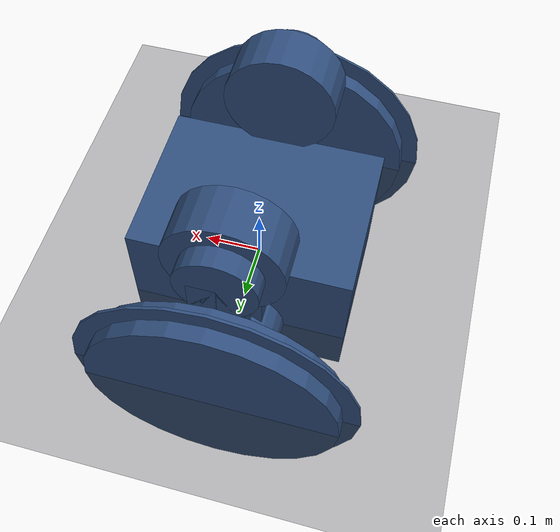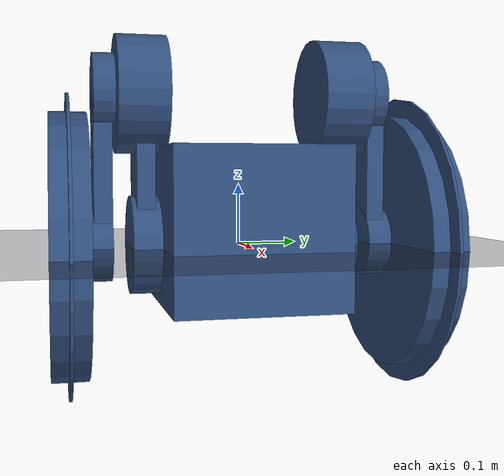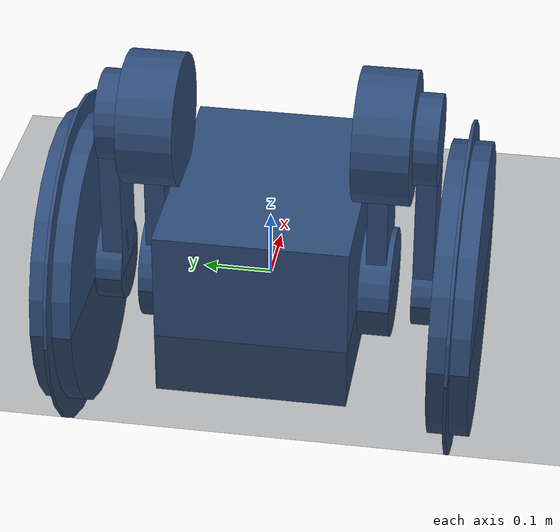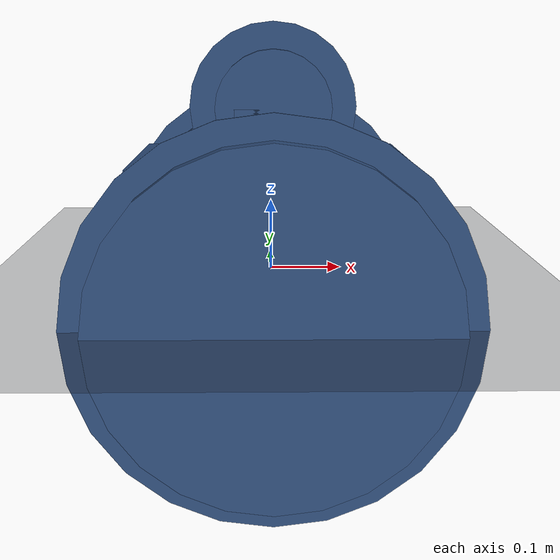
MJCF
<mujoco model="ascento_mujoco">
  <compiler angle="radian" meshdir="./"/>

  <worldbody>
    <geom name="floor" size="20 20 0.1" type="plane" contype="2" friction="0.8 0.02 0.002" solref="0.006" solimp="0.9 0.97" rgba="0.12 0.13 0.16 1"/>
    <light name="studio_key" pos="-1.5 -2.5 3" ambient="0.9 0.9 0.9" diffuse="1 1 1"/>
    <light name="studio_fill" pos="1.5 1.5 2.2" ambient="0.3 0.3 0.3" diffuse="0.9 0.9 0.9"/>
    <light name="studio_front" pos="0 -3 1.2" ambient="0.4 0.4 0.4" diffuse="1 1 1"/>
    <body name="base">
      <joint type="free"/>
      <geom size="0.19 0.14 0.13" pos="0 0 0.034" type="box" conaffinity="2" rgba="0.18 0.3 0.48 1"/>
      <geom size="0.068 0.115" type="cylinder" conaffinity="2" rgba="0.18 0.3 0.48 1"/>
      <site name="imu_reference"/>
      <body name="left_thigh" pos="0 0.1385 0">
        <inertial pos="0 0.038 0.212" quat="0.705337 -0.0135545 0.0179466 0.708515" mass="3.783" diaginertia="0.0464738 0.0410211 0.00933011"/>
        <joint name="left_hip" range="-4.71239 -1.5708" actuatorfrcrange="-40 40" frictionloss="0.5" axis="0 -1 0" limited="true"/>
        <geom size="0.082 0.024" pos="0 0.024 0" quat="0.707107 0.707107 0 0" type="cylinder" conaffinity="2" rgba="0.18 0.3 0.48 1"/>
        <geom size="0.098 0.04125" pos="0 0.03 0.25" quat="0.707107 0.707107 0 0" type="cylinder" conaffinity="2" rgba="0.18 0.3 0.48 1"/>
        <geom size="0.0525 0.015 0.125" pos="0 0.025 0.125" type="box" conaffinity="2" rgba="0.18 0.3 0.48 1"/>
        <body name="left_shank" pos="0 0.073 0.25">
          <inertial pos="0 0.035 -0.188" quat="0.706988 0.0372767 -0.0356313 0.705344" mass="2.266" diaginertia="0.0256807 0.0243201 0.0029812"/>
          <joint name="left_knee" range="-4.71239 -1.5708" actuatorfrcrange="-40 40" frictionloss="0.5" axis="0 1 0" limited="true"/>
          <geom size="0.067 0.0175" pos="0 0.0175 0" quat="0.707107 0.707107 0 0" type="cylinder" conaffinity="2" rgba="0.18 0.3 0.48 1"/>
          <geom size="0.06 0.02" pos="0 0.025 -0.25" quat="0.707107 0.707107 0 0" type="cylinder" conaffinity="2" rgba="0.18 0.3 0.48 1"/>
          <geom size="0.045 0.015 0.125" pos="0 0.02 -0.125" type="box" conaffinity="2" rgba="0.18 0.3 0.48 1"/>
          <body name="left_wheel" pos="0 0.075 -0.25">
            <inertial pos="0 0 0" quat="0.706743 -0.0227194 -0.0227063 0.706741" mass="1.712" diaginertia="0.07635 0.0389109 0.0386891"/>
            <joint name="left_wheel_joint" actuatorfrcrange="-40 40" frictionloss="0.2" axis="0 1 0"/>
            <geom size="0.25 0.0025" quat="0.707107 0.707107 0 0" type="cylinder" conaffinity="2" condim="6" friction="0.8 0.02 0.002" solref="0.006" solimp="0.9 0.97" rgba="0.18 0.3 0.48 1"/>
            <geom size="0.22 0.03" quat="0.707107 0.707107 0 0" type="cylinder" conaffinity="2" condim="6" friction="0.8 0.02 0.002" solref="0.006" solimp="0.9 0.97" rgba="0.18 0.3 0.48 1"/>
          </body>
        </body>
      </body>
      <body name="right_thigh" pos="0 -0.1385 0" quat="0 0 0 -1">
        <inertial pos="0 0.038 0.212" quat="0.705337 -0.0135545 0.0179466 0.708515" mass="3.783" diaginertia="0.0464738 0.0410211 0.00933011"/>
        <joint name="right_hip" range="-4.71239 -1.5708" actuatorfrcrange="-40 40" frictionloss="0.5" axis="0 1 0" limited="true"/>
        <geom size="0.082 0.024" pos="0 0.024 0" quat="0.707107 0.707107 0 0" type="cylinder" conaffinity="2" rgba="0.18 0.3 0.48 1"/>
        <geom size="0.098 0.04125" pos="0 0.03 0.25" quat="0.707107 0.707107 0 0" type="cylinder" conaffinity="2" rgba="0.18 0.3 0.48 1"/>
        <geom size="0.0525 0.015 0.125" pos="0 0.025 0.125" type="box" conaffinity="2" rgba="0.18 0.3 0.48 1"/>
        <body name="right_shank" pos="0 0.073 0.25">
          <inertial pos="0 0.035 -0.188" quat="0.706988 0.0372767 -0.0356313 0.705344" mass="2.266" diaginertia="0.0256807 0.0243201 0.0029812"/>
          <joint name="right_knee" range="-4.71239 -1.5708" actuatorfrcrange="-40 40" frictionloss="0.5" axis="0 -1 0" limited="true"/>
          <geom size="0.067 0.0175" pos="0 0.0175 0" quat="0.707107 0.707107 0 0" type="cylinder" conaffinity="2" rgba="0.18 0.3 0.48 1"/>
          <geom size="0.06 0.02" pos="0 0.025 -0.25" quat="0.707107 0.707107 0 0" type="cylinder" conaffinity="2" rgba="0.18 0.3 0.48 1"/>
          <geom size="0.045 0.015 0.125" pos="0 0.02 -0.125" type="box" conaffinity="2" rgba="0.18 0.3 0.48 1"/>
          <body name="right_wheel" pos="0 0.075 -0.25">
            <inertial pos="0 0 0" quat="0.706743 -0.0227194 -0.0227063 0.706741" mass="1.712" diaginertia="0.07635 0.0389109 0.0386891"/>
            <joint name="right_wheel_joint" actuatorfrcrange="-40 40" frictionloss="0.2" axis="0 -1 0"/>
            <geom size="0.25 0.0025" quat="0.707107 0.707107 0 0" type="cylinder" conaffinity="2" condim="6" friction="0.8 0.02 0.002" solref="0.006" solimp="0.9 0.97" rgba="0.18 0.3 0.48 1"/>
            <geom size="0.22 0.03" quat="0.707107 0.707107 0 0" type="cylinder" conaffinity="2" condim="6" friction="0.8 0.02 0.002" solref="0.006" solimp="0.9 0.97" rgba="0.18 0.3 0.48 1"/>
          </body>
        </body>
      </body>
    </body>
  </worldbody>

  <actuator>
    <general name="left_hip_motor" joint="left_hip" ctrlrange="-40 40" ctrllimited="true" forcelimited="true" forcerange="-40 40"/>
    <general name="left_knee_motor" joint="left_knee" ctrlrange="-40 40" ctrllimited="true" forcelimited="true" forcerange="-40 40"/>
    <general name="left_wheel_joint_motor" joint="left_wheel_joint" ctrlrange="-40 40" ctrllimited="true" forcelimited="true" forcerange="-40 40"/>
    <general name="right_hip_motor" joint="right_hip" ctrlrange="-40 40" ctrllimited="true" forcelimited="true" forcerange="-40 40"/>
    <general name="right_knee_motor" joint="right_knee" ctrlrange="-40 40" ctrllimited="true" forcelimited="true" forcerange="-40 40"/>
    <general name="right_wheel_joint_motor" joint="right_wheel_joint" ctrlrange="-40 40" ctrllimited="true" forcelimited="true" forcerange="-40 40"/>
  </actuator>
</mujoco>
